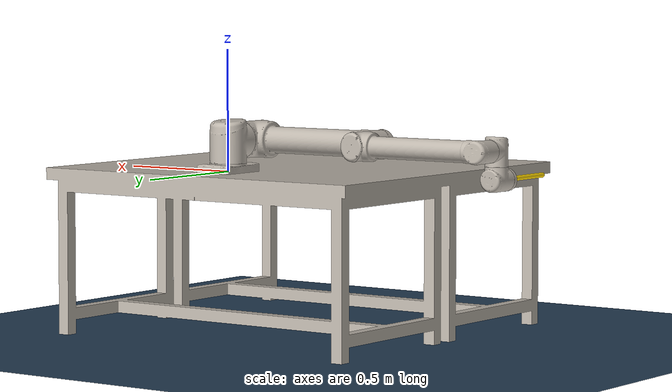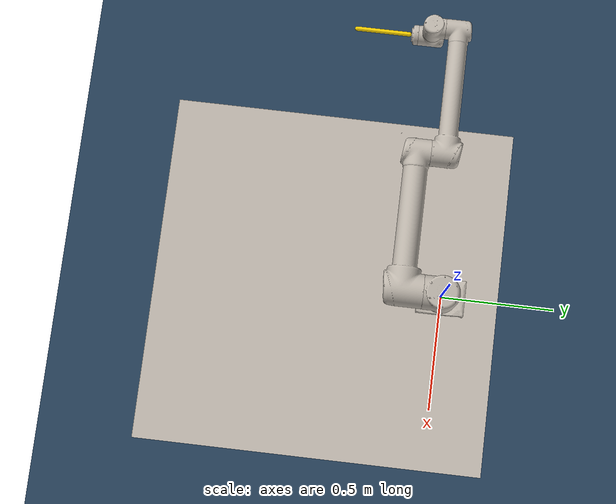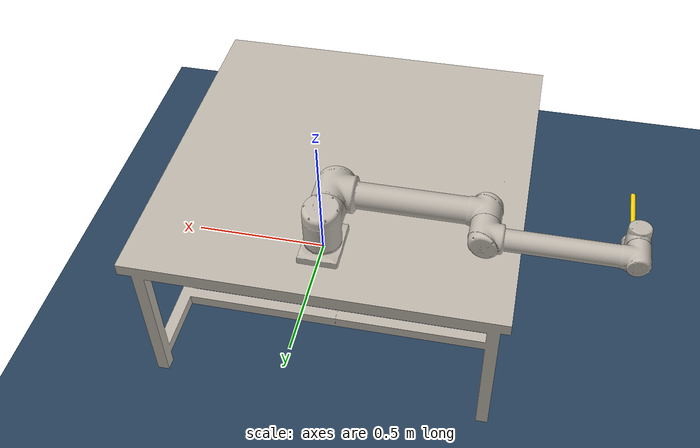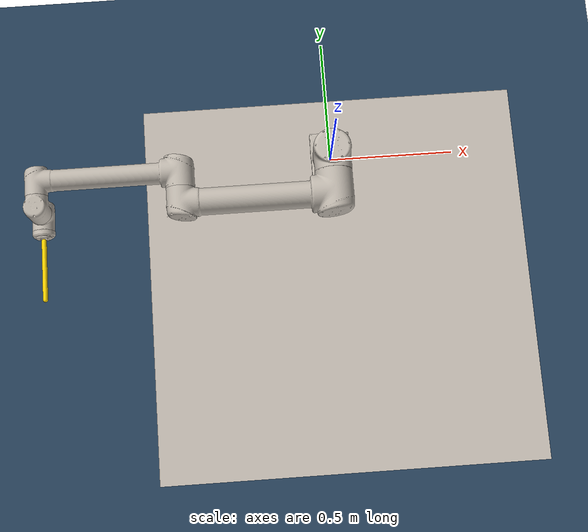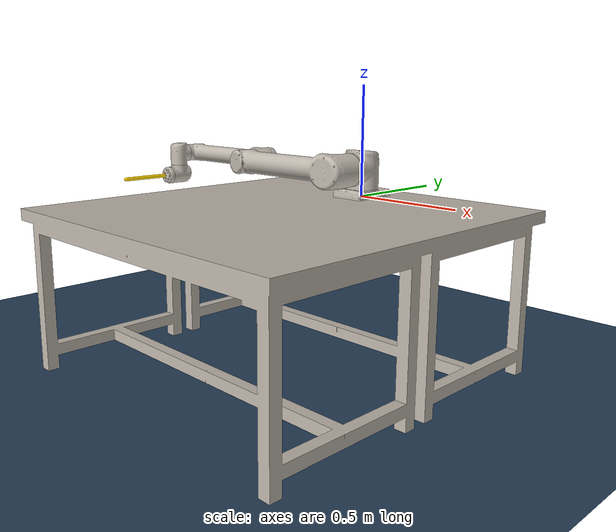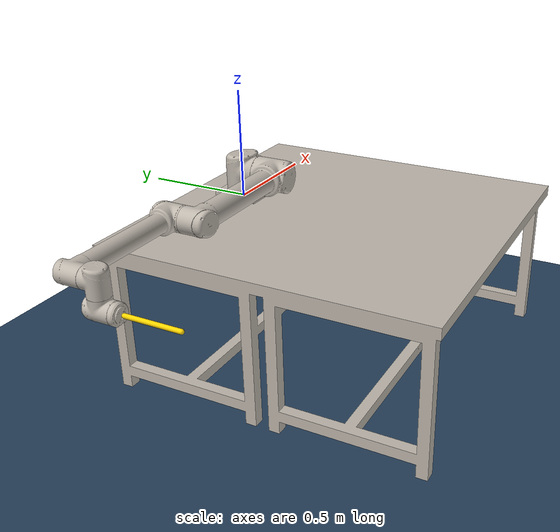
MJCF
<mujoco model="mjc_sim">
  <compiler angle="radian" autolimits="true" />
  <option integrator="implicitfast" />

  <visual>
    <global offwidth="1920" offheight="1080" />
  </visual>

  <default>
    <geom condim="4" friction="0.2 0.02 0.0001" />
  </default>

  <include file="assets/lab_scene.xml" />
  <include file="assets/ur10_rod.xml" />
  <include file="assets/cracker_box_flipped.xml" />
</mujoco>

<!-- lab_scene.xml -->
<mujoco model="lab_scene">
  <compiler angle="radian" />

  <asset>
    <mesh name="lab_scene_visual_mesh" file="lab_scene/textured.obj" />
    <mesh name="lab_scene_collision_mesh" file="lab_scene/textured_box.stl" />
    <texture name="lab_scene_texture" type="2d" file="lab_scene/texture_map.png" />
    <material name="lab_scene_material" texture="lab_scene_texture" />

    <texture name="grid" type="2d" builtin="checker" width="512" height="512" rgb1=".1 .2 .3" rgb2=".2 .3 .4"/>
    <material name="grid" texture="grid" texrepeat="1 1" texuniform="true" reflectance=".2"/>
  </asset>

  <worldbody>
    <body name="lab_scene" pos="0 0 0" euler="0 0 0">
      <geom name="lab_scene_visual_geom" type="mesh" mesh="lab_scene_visual_mesh" material="lab_scene_material" pos="0.0 -0.508 -0.7" euler="0 0 -1.57079632679" contype="0" conaffinity="0" group="0" />

      <geom name="lab_scene_collision_geom" type="plane" size="0.762 0.762 0.05" pos="0.0 -0.508 0.0" euler="0 0 0" contype="1" conaffinity="1" group="3" />

      <inertial pos="0 0 0" euler="0 0 0" mass="10.0" diaginertia="0.001 0.001 0.001" />
    </body>

    <body name="lab_scene_floor" pos="0 0 -0.7" euler="0 0 0">
      <geom name="floor" pos="0 0 0" size="0 0 .05" type="plane" material="grid" condim="3" contype="0" conaffinity="0" />
    </body>
  </worldbody>
</mujoco>

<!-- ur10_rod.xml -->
<mujoco model="ur10">
  <compiler angle="radian" autolimits="true"/>

  <option integrator="implicitfast"/>

  <default>
    <default class="ur10">
      <material specular="0.5" shininess="0.25"/>
      <joint axis="0 1 0" range="-6.28319 6.28319" armature="0.1"/>
      <position ctrlrange="-6.2831 6.2831"/>
      <general biastype="affine" ctrlrange="-6.2831 6.2831" gainprm="5000" biasprm="0 -5000 -500"/>

      <default class="size4">
        <joint damping="10"/>
        <general forcerange="-330 330"/>
      </default>
      <default class="size3">
        <joint damping="5"/>
        <general forcerange="-150 150"/>
        <default class="size3_limited">
          <joint range="-3.1415 3.1415"/>
          <general ctrlrange="-3.1415 3.1415"/>
        </default>
      </default>
      <default class="size2">
        <joint damping="2"/>
        <general forcerange="-56 56"/>
      </default>

      <default class="visual">
        <geom type="mesh" contype="0" conaffinity="0" group="2"/>
      </default>
      <default class="collision">
        <geom type="capsule" group="3"/>
      </default>

      <site size="0.001" rgba="0.5 0.5 0.5 0.3" group="3"/>
    </default>
  </default>

  <asset>
    <mesh file="ur10/ur10/visual/base.obj"/>
    <mesh file="ur10/ur10/visual/shoulder.obj"/>
    <mesh file="ur10/ur10/visual/upperarm.obj"/>
    <mesh file="ur10/ur10/visual/forearm.obj"/>
    <mesh file="ur10/ur10/visual/wrist1.obj"/>
    <mesh file="ur10/ur10/visual/wrist2.obj"/>
    <mesh file="ur10/ur10/visual/wrist3.obj"/>

    <texture name="base_texture" type="2d" file="ur10/ur10/visual/base_color.png"/>
    <texture name="shoulder_texture" type="2d" file="ur10/ur10/visual/shoulder_color.png"/>
    <texture name="upperarm_texture" type="2d" file="ur10/ur10/visual/upperarm_color.png"/>
    <texture name="forearm_texture" type="2d" file="ur10/ur10/visual/forearm_color.png"/>
    <texture name="wrist1_texture" type="2d" file="ur10/ur10/visual/wrist1_color.png"/>
    <texture name="wrist2_texture" type="2d" file="ur10/ur10/visual/wrist2_color.png"/>
    <texture name="wrist3_texture" type="2d" file="ur10/ur10/visual/wrist3_color.png"/>

    <material class="ur10" name="base_visual" texture="base_texture" />
    <material class="ur10" name="shoulder_visual" texture="shoulder_texture" />
    <material class="ur10" name="upperarm_visual" texture="upperarm_texture" />
    <material class="ur10" name="forearm_visual" texture="forearm_texture" />
    <material class="ur10" name="wrist1_visual" texture="wrist1_texture" />
    <material class="ur10" name="wrist2_visual" texture="wrist2_texture" />
    <material class="ur10" name="wrist3_visual" texture="wrist3_texture" />

    <material class="ur10" name="black" rgba="0.033 0.033 0.033 1"/>
    <material class="ur10" name="gold" rgba="1 0.843 0 1"/>
  </asset>

  <worldbody>
    <light name="spotlight" mode="targetbodycom" target="wrist_2_link" pos="0 -1 2"/>

    <body name="base" quat="0 0 0 -1" childclass="ur10">
      <inertial mass="4.0" pos="0 0 0" diaginertia="0.0061063308908 0.0061063308908 0.01125"/>
      <geom mesh="base" material="base_visual" class="visual"/>

      <body name="shoulder_link" pos="0 0 0.1273">
        <inertial pos="0 0 0" mass="7.778" diaginertia="0.0314743 0.0314743 0.0218756"/>
        <joint name="shoulder_pan_joint" class="size4" axis="0 0 1"/>
        <geom mesh="shoulder" material="shoulder_visual" class="visual"/>
        <geom class="collision" size="0.078 0.035" pos="0 0 -0.01"/>

        <body name="upperarm_link" pos="0 0.220941 0" quat="1 0 1 0">
          <inertial pos="0 0 0.3065" mass="12.93" diaginertia="0.421754 0.421754 0.0363656"/>
          <joint name="shoulder_lift_joint" class="size4"/>
          <geom mesh="upperarm" material="upperarm_visual" class="visual"/>
          <geom class="collision" pos="0 -0.1 0" quat="1 1 0 0" size="0.078 0.08"/>
          <geom class="collision" size="0.055 0.3" pos="0 -0.045 0.3"/>

          <body name="forearm_link" pos="0 -0.1719 0.612">
            <inertial pos="0 0 0.28615" mass="3.87" diaginertia="0.11107 0.11107 0.0108844"/>
            <joint name="elbow_joint" class="size3_limited"/>
            <geom mesh="forearm" material="forearm_visual" class="visual"/>
            <geom class="collision" pos="0 0.065 0" quat="1 1 0 0" size="0.058 0.085"/>
            <geom class="collision" size="0.045 0.28" pos="0 -0.001 0.29"/>

            <body name="wrist_1_link" pos="0 0 0.5723" quat="1 0 1 0">
              <inertial pos="0 0.1149 0" quat="0.5 0.5 -0.5 0.5" mass="1.96"
                diaginertia="0.00551245 0.0051082 0.0051082"/>
              <joint name="wrist_1_joint" class="size2"/>
              <geom mesh="wrist1" material="wrist1_visual" class="visual"/>
              <geom class="collision" pos="0 0.045 0" quat="1 1 0 0" size="0.05 0.06"/>

              <body name="wrist_2_link" pos="0 0.1149 0">
                <inertial pos="0 0 0.1157" quat="0.5 0.5 -0.5 0.5" mass="1.96"
                  diaginertia="0.00551245 0.0051082 0.0051082"/>
                <joint name="wrist_2_joint" axis="0 0 1" class="size2"/>
                <geom mesh="wrist2" material="wrist2_visual" class="visual"/>
                <geom class="collision" size="0.046 0.065" pos="0 -0.001 0.045"/>
                <geom class="collision" pos="0 0.022 0.116" quat="1 1 0 0" size="0.046 0.03"/>

                <body name="wrist_3_link" pos="0 0 0.1157">
                  <inertial pos="0.07695 0 0" quat="0 1 -1 0" mass="0.202"
                    diaginertia="0.000204525 0.00011792 0.00011792"/>
                  <joint name="wrist_3_joint" class="size2"/>
                  <geom mesh="wrist3" material="wrist3_visual" class="visual"/>

                  <body name="rod" pos="0 0.2222 0" quat="1 -1 0 0">
                    <inertial pos="0 0 0" mass="0.1" diaginertia="0.001 0.001 0.001"/>
                    <geom type="capsule" size="0.01 0.12" material="gold" class="visual"/>
                    <geom class="collision" size="0.01 0.12"/>
                  </body>
                </body>
              </body>
            </body>
          </body>
        </body>
      </body>
    </body>
  </worldbody>

  <actuator>
    <general class="size4" name="shoulder_pan" joint="shoulder_pan_joint"/>
    <general class="size4" name="shoulder_lift" joint="shoulder_lift_joint"/>
    <general class="size3_limited" name="elbow" joint="elbow_joint"/>
    <general class="size2" name="wrist_1" joint="wrist_1_joint"/>
    <general class="size2" name="wrist_2" joint="wrist_2_joint"/>
    <general class="size2" name="wrist_3" joint="wrist_3_joint"/>
  </actuator>
</mujoco>

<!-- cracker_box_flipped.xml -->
<mujoco model="cracker_box_flipped">
  <compiler angle="radian" />

  <asset>
    <mesh name="cracker_box_flipped_visual_mesh" file="cracker_box_flipped/textured.obj" />
    <mesh name="cracker_box_flipped_collision_mesh" file="cracker_box_flipped/textured_convex.stl" />
    <texture name="cracker_box_flipped_texture" type="2d" file="cracker_box_flipped/texture_map.png" />
    <material name="cracker_box_flipped_material" texture="cracker_box_flipped_texture" />
  </asset>

  <worldbody>
    <body name="cracker_box_flipped" pos="0 0 0" euler="0 0 0">
      <freejoint name="cracker_box_flipped_joint" />

      <geom name="cracker_box_flipped_visual_geom" type="mesh" mesh="cracker_box_flipped_visual_mesh" material="cracker_box_flipped_material" pos="0.01420505447388014 -0.10220486833098277 0.01485355781018036" euler="0 0 0" contype="0" conaffinity="0" group="0" />

      <geom name="cracker_box_flipped_collision_geom" type="mesh" mesh="cracker_box_flipped_collision_mesh" pos="0.01420505447388014 -0.10220486833098277 0.01485355781018036" euler="0 0 0" contype="1" conaffinity="1" group="3" />

      <inertial pos="0 0 0" euler="0 0 0" mass="0.411" diaginertia="0.001 0.001 0.001" />
    </body>
  </worldbody>
</mujoco>
